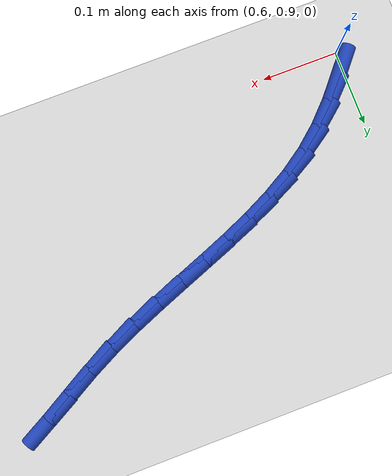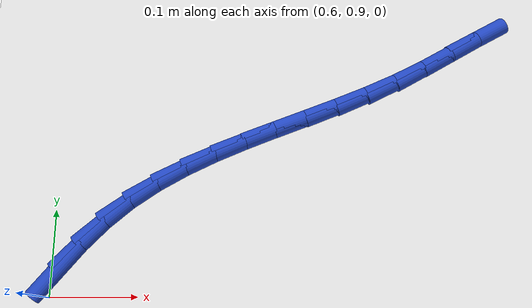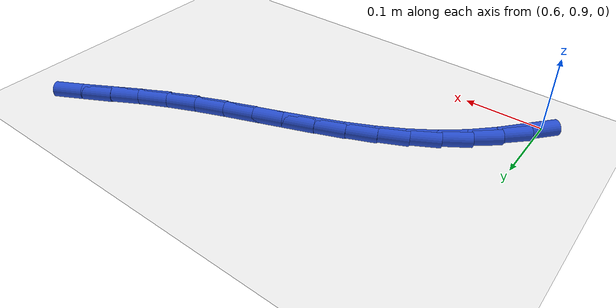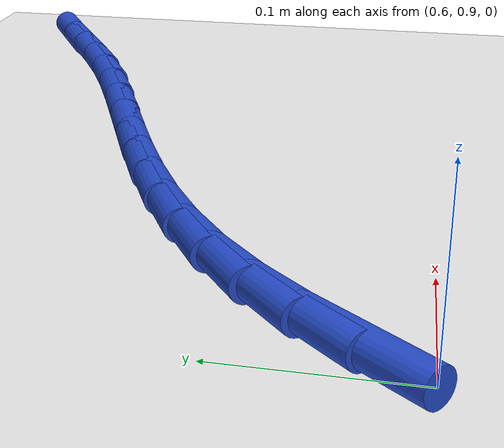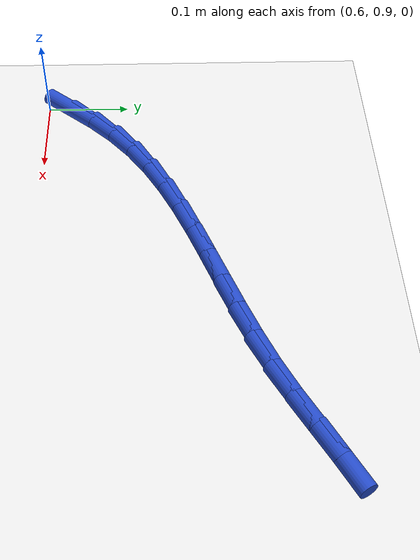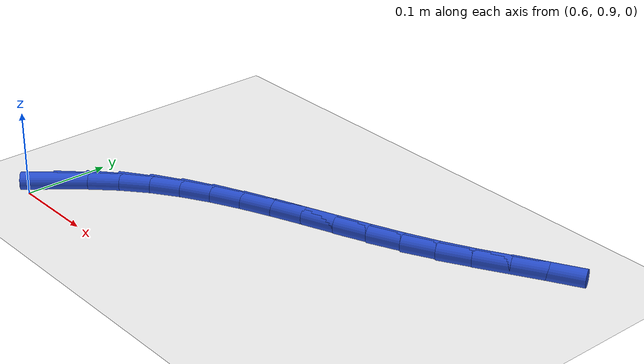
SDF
<sdf version="1.6">
 <world name="default">
  <model name="ground_plane">
   <static>1</static>
   <link name="link">
    <collision name="collision">
     <geometry><plane><normal>0 0 1</normal><size>100 100</size></plane></geometry>
     <surface><friction><ode><mu>100</mu><mu2>50</mu2></ode></friction></surface>
    </collision>
    <visual name="visual">
     <cast_shadows>0</cast_shadows>
     <geometry><plane><normal>0 0 1</normal><size>100 100</size></plane></geometry>
     <material>
      <script><uri>file://media/materials/scripts/gazebo.material</uri><name>Gazebo/WhiteGlow</name></script>
     </material>
    </visual>
   </link>
  </model>
  <model name="line">
   <link name="link_30">
    <pose>0.6095707258741935 0.9305435036866514 0.01 0 1.57 0.8728598577937738</pose>
    <collision name="collision">
     <geometry><cylinder><radius>0.01</radius><length>0.08</length></cylinder></geometry>
    </collision>
    <visual name="visual">
     <material>
      <script><name>Gazebo/Blue</name><uri>file://media/materials/scripts/gazebo.material</uri></script>
     </material>
     <geometry><cylinder><radius>0.01</radius><length>0.08</length></cylinder></geometry>
    </visual>
   </link>
   <link name="link_31">
    <pose>0.6334807425102751 0.9590496523815005 0.01 0 1.57 0.7964702260245554</pose>
    <collision name="collision">
     <geometry><cylinder><radius>0.01</radius><length>0.08</length></cylinder></geometry>
    </collision>
    <visual name="visual">
     <material>
      <script><name>Gazebo/Blue</name><uri>file://media/materials/scripts/gazebo.material</uri></script>
     </material>
     <geometry><cylinder><radius>0.01</radius><length>0.08</length></cylinder></geometry>
    </visual>
   </link>
   <link name="link_32">
    <pose>0.6591680410628399 0.9853121660135469 0.01 0 1.57 0.7021201968491213</pose>
    <collision name="collision">
     <geometry><cylinder><radius>0.01</radius><length>0.08</length></cylinder></geometry>
    </collision>
    <visual name="visual">
     <material>
      <script><name>Gazebo/Blue</name><uri>file://media/materials/scripts/gazebo.material</uri></script>
     </material>
     <geometry><cylinder><radius>0.01</radius><length>0.08</length></cylinder></geometry>
    </visual>
   </link>
   <link name="link_33">
    <pose>0.6870476698896798 1.0088960804382134 0.01 0 1.57 0.6019573544841942</pose>
    <collision name="collision">
     <geometry><cylinder><radius>0.01</radius><length>0.08</length></cylinder></geometry>
    </collision>
    <visual name="visual">
     <material>
      <script><name>Gazebo/Blue</name><uri>file://media/materials/scripts/gazebo.material</uri></script>
     </material>
     <geometry><cylinder><radius>0.01</radius><length>0.08</length></cylinder></geometry>
    </visual>
   </link>
   <link name="link_34">
    <pose>0.7172820878485096 1.0296675532702149 0.01 0 1.57 0.5182780320993075</pose>
    <collision name="collision">
     <geometry><cylinder><radius>0.01</radius><length>0.08</length></cylinder></geometry>
    </collision>
    <visual name="visual">
     <material>
      <script><name>Gazebo/Blue</name><uri>file://media/materials/scripts/gazebo.material</uri></script>
     </material>
     <geometry><cylinder><radius>0.01</radius><length>0.08</length></cylinder></geometry>
    </visual>
   </link>
   <link name="link_35">
    <pose>0.7495501264799859 1.048069293043882 0.01 0 1.57 0.45362031994810936</pose>
    <collision name="collision">
     <geometry><cylinder><radius>0.01</radius><length>0.08</length></cylinder></geometry>
    </collision>
    <visual name="visual">
     <material>
      <script><name>Gazebo/Blue</name><uri>file://media/materials/scripts/gazebo.material</uri></script>
     </material>
     <geometry><cylinder><radius>0.01</radius><length>0.08</length></cylinder></geometry>
    </visual>
   </link>
   <link name="link_36">
    <pose>0.7834760079723582 1.064609110224804 0.01 0 1.57 0.40720707753410135</pose>
    <collision name="collision">
     <geometry><cylinder><radius>0.01</radius><length>0.08</length></cylinder></geometry>
    </collision>
    <visual name="visual">
     <material>
      <script><name>Gazebo/Blue</name><uri>file://media/materials/scripts/gazebo.material</uri></script>
     </material>
     <geometry><cylinder><radius>0.01</radius><length>0.08</length></cylinder></geometry>
    </visual>
   </link>
   <link name="link_37">
    <pose>0.8186839545138754 1.0797948152785708 0.01 0 1.57 0.3779665944797252</pose>
    <collision name="collision">
     <geometry><cylinder><radius>0.01</radius><length>0.08</length></cylinder></geometry>
    </collision>
    <visual name="visual">
     <material>
      <script><name>Gazebo/Blue</name><uri>file://media/materials/scripts/gazebo.material</uri></script>
     </material>
     <geometry><cylinder><radius>0.01</radius><length>0.08</length></cylinder></geometry>
    </visual>
   </link>
   <link name="link_38">
    <pose>0.8547981882927865 1.0941342186707719 0.01 0 1.57 0.36495588718181465</pose>
    <collision name="collision">
     <geometry><cylinder><radius>0.01</radius><length>0.08</length></cylinder></geometry>
    </collision>
    <visual name="visual">
     <material>
      <script><name>Gazebo/Blue</name><uri>file://media/materials/scripts/gazebo.material</uri></script>
     </material>
     <geometry><cylinder><radius>0.01</radius><length>0.08</length></cylinder></geometry>
    </visual>
   </link>
   <link name="link_39">
    <pose>0.8914429314973411 1.1081351308669973 0.01 0 1.57 0.3675664367834767</pose>
    <collision name="collision">
     <geometry><cylinder><radius>0.01</radius><length>0.08</length></cylinder></geometry>
    </collision>
    <visual name="visual">
     <material>
      <script><name>Gazebo/Blue</name><uri>file://media/materials/scripts/gazebo.material</uri></script>
     </material>
     <geometry><cylinder><radius>0.01</radius><length>0.08</length></cylinder></geometry>
    </visual>
   </link>
   <link name="link_40">
    <pose>0.9282424063157878 1.1223053623328365 0.01 0 1.57 0.38558636863311446</pose>
    <collision name="collision">
     <geometry><cylinder><radius>0.01</radius><length>0.08</length></cylinder></geometry>
    </collision>
    <visual name="visual">
     <material>
      <script><name>Gazebo/Blue</name><uri>file://media/materials/scripts/gazebo.material</uri></script>
     </material>
     <geometry><cylinder><radius>0.01</radius><length>0.08</length></cylinder></geometry>
    </visual>
   </link>
   <link name="link_41">
    <pose>0.9648208349363763 1.1371527235338792 0.01 0 1.57 0.4191633197868349</pose>
    <collision name="collision">
     <geometry><cylinder><radius>0.01</radius><length>0.08</length></cylinder></geometry>
    </collision>
    <visual name="visual">
     <material>
      <script><name>Gazebo/Blue</name><uri>file://media/materials/scripts/gazebo.material</uri></script>
     </material>
     <geometry><cylinder><radius>0.01</radius><length>0.08</length></cylinder></geometry>
    </visual>
   </link>
   <link name="link_42">
    <pose>1.0008024395473547 1.1531850249357147 0.01 0 1.57 0.46791008611691043</pose>
    <collision name="collision">
     <geometry><cylinder><radius>0.01</radius><length>0.08</length></cylinder></geometry>
    </collision>
    <visual name="visual">
     <material>
      <script><name>Gazebo/Blue</name><uri>file://media/materials/scripts/gazebo.material</uri></script>
     </material>
     <geometry><cylinder><radius>0.01</radius><length>0.08</length></cylinder></geometry>
    </visual>
   </link>
   <link name="link_43">
    <pose>1.0358251735515824 1.1708833961236986 0.01 0 1.57 0.510176439108887</pose>
    <collision name="collision">
     <geometry><cylinder><radius>0.01</radius><length>0.08</length></cylinder></geometry>
    </collision>
    <visual name="visual">
     <material>
      <script><name>Gazebo/Blue</name><uri>file://media/materials/scripts/gazebo.material</uri></script>
     </material>
     <geometry><cylinder><radius>0.01</radius><length>0.08</length></cylinder></geometry>
    </visual>
   </link>
   <link name="link_44">
    <pose>1.0699211122101409 1.1899631554715573 0.01 0 1.57 0.5211549498853854</pose>
    <collision name="collision">
     <geometry><cylinder><radius>0.01</radius><length>0.08</length></cylinder></geometry>
    </collision>
    <visual name="visual">
     <material>
      <script><name>Gazebo/Blue</name><uri>file://media/materials/scripts/gazebo.material</uri></script>
     </material>
     <geometry><cylinder><radius>0.01</radius><length>0.08</length></cylinder></geometry>
    </visual>
   </link>
   <link name="link_45">
    <pose>1.1035655909958189 1.209278330275871 0.01 0 1.57 0.49891949203438674</pose>
    <collision name="collision">
     <geometry><cylinder><radius>0.01</radius><length>0.08</length></cylinder></geometry>
    </collision>
    <visual name="visual">
     <material>
      <script><name>Gazebo/Blue</name><uri>file://media/materials/scripts/gazebo.material</uri></script>
     </material>
     <geometry><cylinder><radius>0.01</radius><length>0.08</length></cylinder></geometry>
    </visual>
   </link>
  </model>
 </world>
</sdf>
